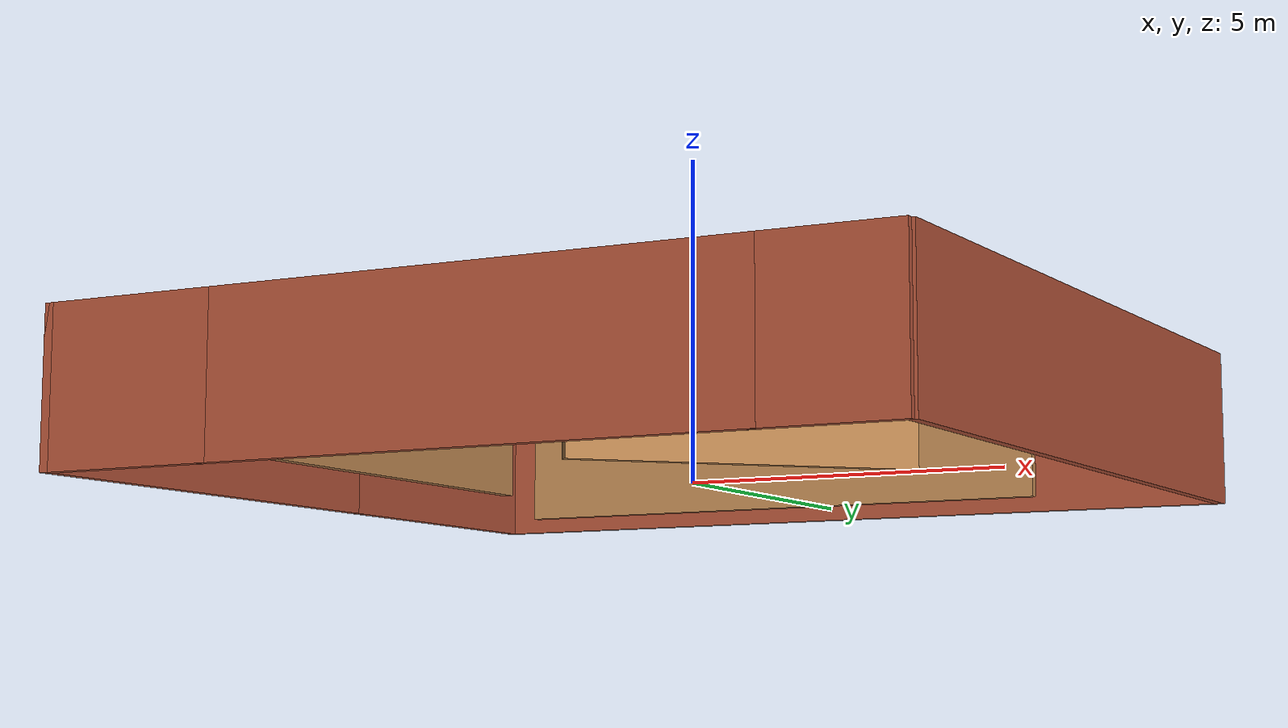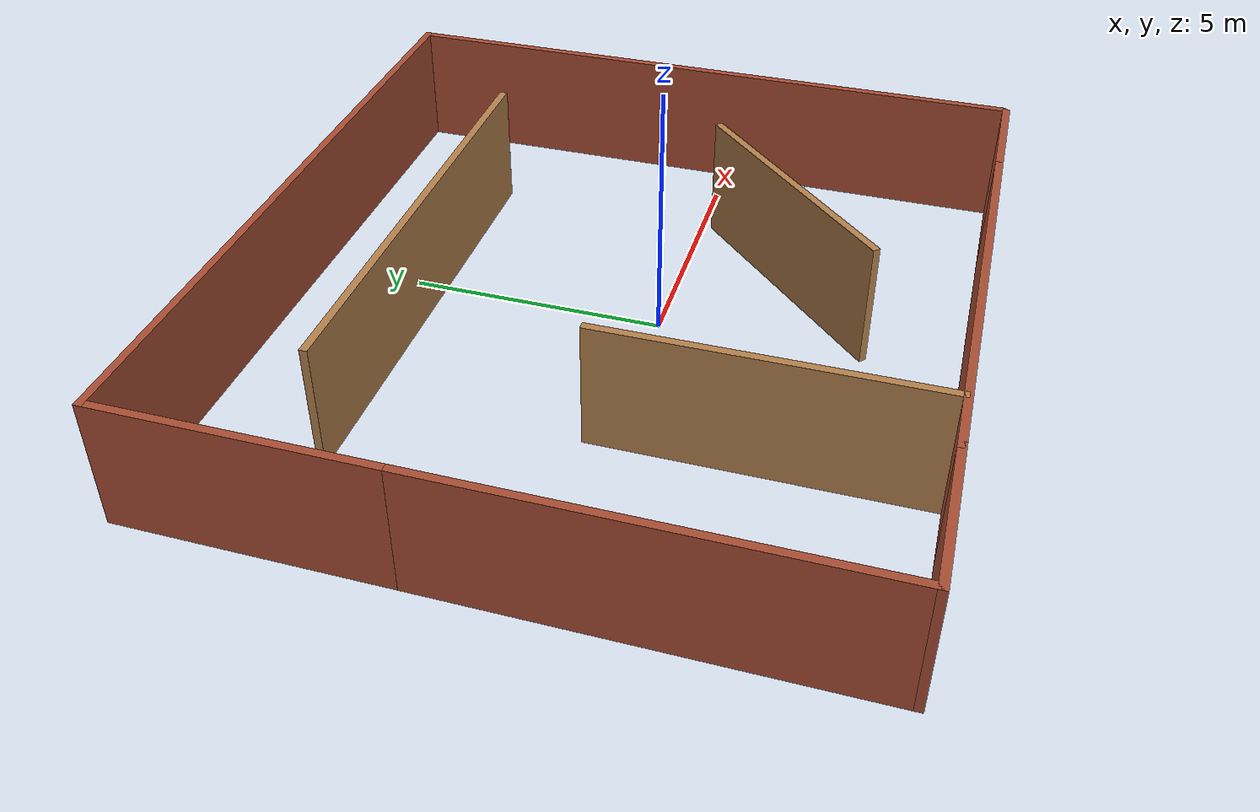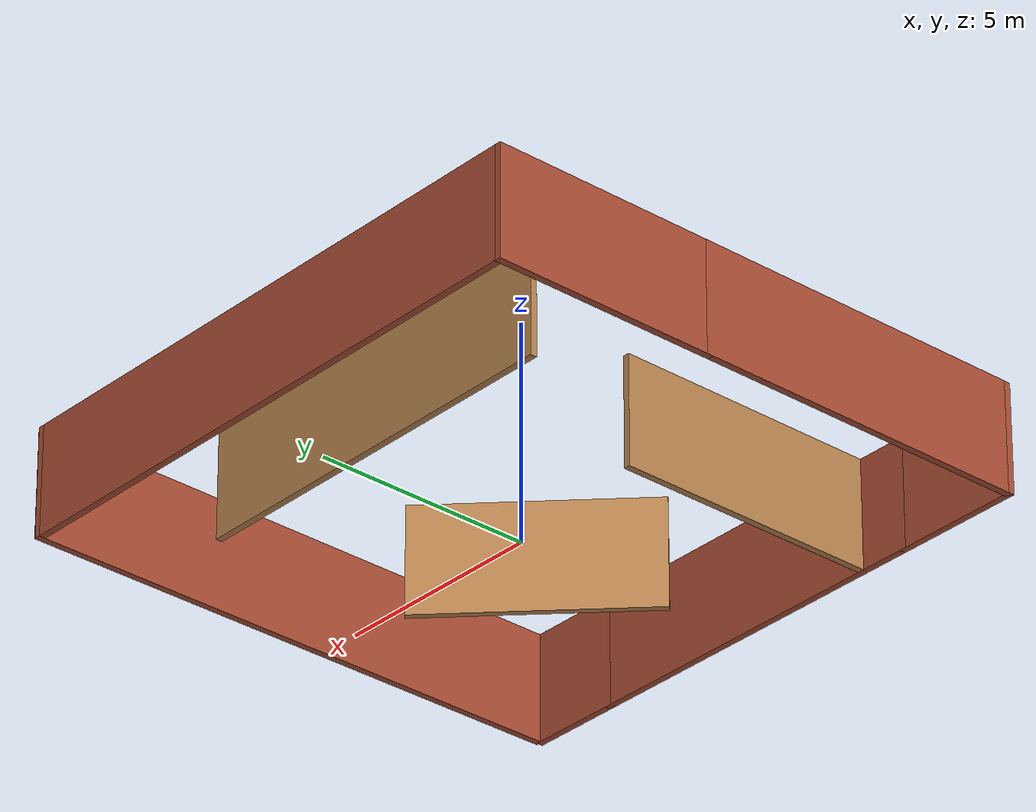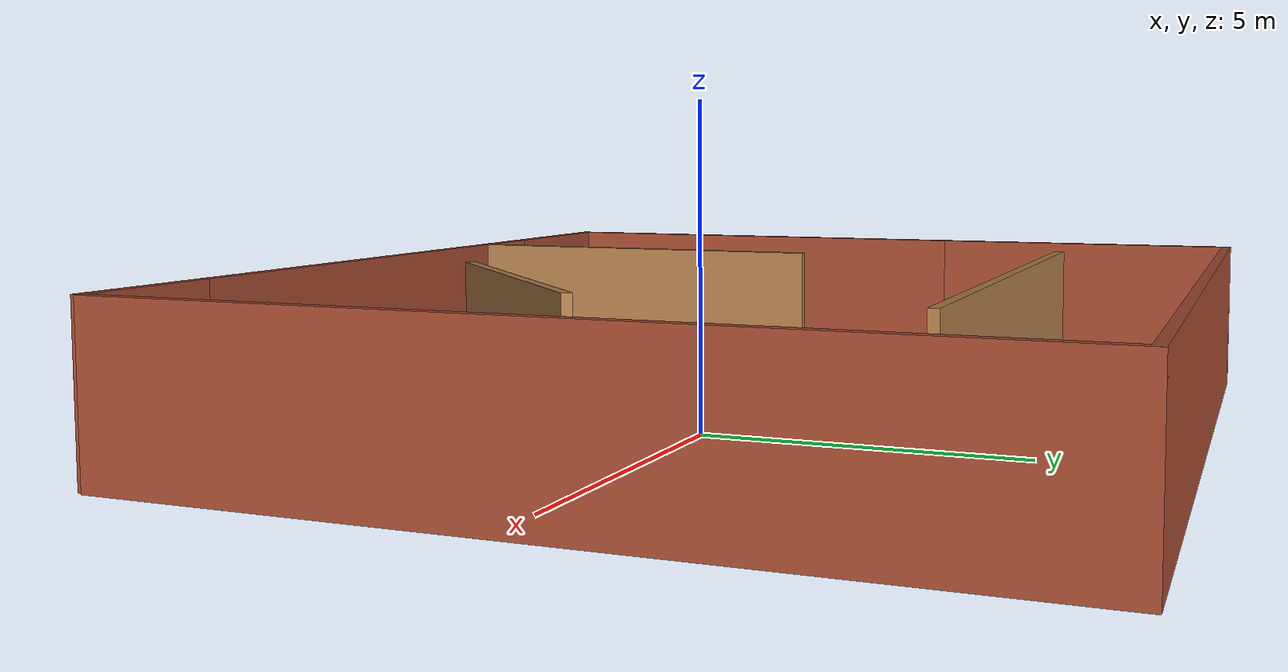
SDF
<?xml version='1.0'?>
<sdf version='1.7'>
  <model name='work'>
    <pose>-0.767569 0.657187 0 0 -0 0</pose>
    <link name='Wall_0'>
      <collision name='Wall_0_Collision'>
        <geometry>
          <box>
            <size>8.75 0.15 2.5</size>
          </box>
        </geometry>
        <pose>0 0 1.25 0 -0 0</pose>
      </collision>
      <visual name='Wall_0_Visual'>
        <pose>0 0 1.25 0 -0 0</pose>
        <geometry>
          <box>
            <size>8.75 0.15 2.5</size>
          </box>
        </geometry>
        <material>
          <script>
            <uri>file://media/materials/scripts/gazebo.material</uri>
            <name>Gazebo/Bricks</name>
          </script>
          <ambient>1 1 1 1</ambient>
        </material>
        <meta>
          <layer>0</layer>
        </meta>
      </visual>
      <pose>0.35 -6.475 0 0 -0 3.14159</pose>
    </link>
    <link name='Wall_11'>
      <collision name='Wall_11_Collision'>
        <geometry>
          <box>
            <size>9.25 0.15 2.5</size>
          </box>
        </geometry>
        <pose>0 0 1.25 0 -0 0</pose>
      </collision>
      <visual name='Wall_11_Visual'>
        <pose>0 0 1.25 0 -0 0</pose>
        <geometry>
          <box>
            <size>9.25 0.15 2.5</size>
          </box>
        </geometry>
        <material>
          <script>
            <uri>file://media/materials/scripts/gazebo.material</uri>
            <name>Gazebo/Wood</name>
          </script>
          <ambient>1 1 1 1</ambient>
        </material>
        <meta>
          <layer>0</layer>
        </meta>
      </visual>
      <pose>-0.058385 3.81084 0 0 -0 0</pose>
    </link>
    <link name='Wall_13'>
      <collision name='Wall_13_Collision'>
        <geometry>
          <box>
            <size>6.25 0.15 2.5</size>
          </box>
        </geometry>
        <pose>0 0 1.25 0 -0 0</pose>
      </collision>
      <visual name='Wall_13_Visual'>
        <pose>0 0 1.25 0 -0 0</pose>
        <geometry>
          <box>
            <size>6.25 0.15 2.5</size>
          </box>
        </geometry>
        <material>
          <script>
            <uri>file://media/materials/scripts/gazebo.material</uri>
            <name>Gazebo/Wood</name>
          </script>
          <ambient>1 1 1 1</ambient>
        </material>
        <meta>
          <layer>0</layer>
        </meta>
      </visual>
      <pose>-2.7709 -3.36567 0 0 -0 1.5708</pose>
    </link>
    <link name='Wall_15'>
      <collision name='Wall_15_Collision'>
        <geometry>
          <box>
            <size>5.25 0.15 2.5</size>
          </box>
        </geometry>
        <pose>0 0 1.25 0 -0 0</pose>
      </collision>
      <visual name='Wall_15_Visual'>
        <pose>0 0 1.25 0 -0 0</pose>
        <geometry>
          <box>
            <size>5.25 0.15 2.5</size>
          </box>
        </geometry>
        <material>
          <script>
            <uri>file://media/materials/scripts/gazebo.material</uri>
            <name>Gazebo/Wood</name>
          </script>
          <ambient>1 1 1 1</ambient>
        </material>
        <meta>
          <layer>0</layer>
        </meta>
      </visual>
      <pose>2.66373 -2.73897 0 0 -0 0.785398</pose>
    </link>
    <link name='Wall_2'>
      <collision name='Wall_2_Collision'>
        <geometry>
          <box>
            <size>3 0.15 2.5</size>
          </box>
        </geometry>
        <pose>0 0 1.25 0 -0 0</pose>
      </collision>
      <visual name='Wall_2_Visual'>
        <pose>0 0 1.25 0 -0 0</pose>
        <geometry>
          <box>
            <size>3 0.15 2.5</size>
          </box>
        </geometry>
        <material>
          <script>
            <uri>file://media/materials/scripts/gazebo.material</uri>
            <name>Gazebo/Bricks</name>
          </script>
          <ambient>1 1 1 1</ambient>
        </material>
        <meta>
          <layer>0</layer>
        </meta>
      </visual>
      <pose>-5.375 -6.475 0 0 -0 3.14159</pose>
    </link>
    <link name='Wall_3'>
      <collision name='Wall_3_Collision'>
        <geometry>
          <box>
            <size>8 0.15 2.5</size>
          </box>
        </geometry>
        <pose>0 0 1.25 0 -0 0</pose>
      </collision>
      <visual name='Wall_3_Visual'>
        <pose>0 0 1.25 0 -0 0</pose>
        <geometry>
          <box>
            <size>8 0.15 2.5</size>
          </box>
        </geometry>
        <material>
          <script>
            <uri>file://media/materials/scripts/gazebo.material</uri>
            <name>Gazebo/Bricks</name>
          </script>
          <ambient>1 1 1 1</ambient>
        </material>
        <meta>
          <layer>0</layer>
        </meta>
      </visual>
      <pose>-6.8 -2.55 0 0 -0 1.5708</pose>
    </link>
    <link name='Wall_4'>
      <collision name='Wall_4_Collision'>
        <geometry>
          <box>
            <size>5.25 0.15 2.5</size>
          </box>
        </geometry>
        <pose>0 0 1.25 0 -0 0</pose>
      </collision>
      <visual name='Wall_4_Visual'>
        <pose>0 0 1.25 0 -0 0</pose>
        <geometry>
          <box>
            <size>5.25 0.15 2.5</size>
          </box>
        </geometry>
        <material>
          <script>
            <uri>file://media/materials/scripts/gazebo.material</uri>
            <name>Gazebo/Bricks</name>
          </script>
          <ambient>1 1 1 1</ambient>
        </material>
        <meta>
          <layer>0</layer>
        </meta>
      </visual>
      <pose>-6.8 3.925 0 0 -0 1.5708</pose>
    </link>
    <link name='Wall_6'>
      <collision name='Wall_6_Collision'>
        <geometry>
          <box>
            <size>13.75 0.15 2.5</size>
          </box>
        </geometry>
        <pose>0 0 1.25 0 -0 0</pose>
      </collision>
      <visual name='Wall_6_Visual'>
        <pose>0 0 1.25 0 -0 0</pose>
        <geometry>
          <box>
            <size>13.75 0.15 2.5</size>
          </box>
        </geometry>
        <material>
          <script>
            <uri>file://media/materials/scripts/gazebo.material</uri>
            <name>Gazebo/Bricks</name>
          </script>
          <ambient>1 1 1 1</ambient>
        </material>
        <meta>
          <layer>0</layer>
        </meta>
      </visual>
      <pose>-0 6.475 0 0 -0 0</pose>
    </link>
    <link name='Wall_7'>
      <collision name='Wall_7_Collision'>
        <geometry>
          <box>
            <size>13 0.15 2.5</size>
          </box>
        </geometry>
        <pose>0 0 1.25 0 -0 0</pose>
      </collision>
      <visual name='Wall_7_Visual'>
        <pose>0 0 1.25 0 -0 0</pose>
        <geometry>
          <box>
            <size>13 0.15 2.5</size>
          </box>
        </geometry>
        <material>
          <script>
            <uri>file://media/materials/scripts/gazebo.material</uri>
            <name>Gazebo/Bricks</name>
          </script>
          <ambient>1 1 1 1</ambient>
        </material>
        <meta>
          <layer>0</layer>
        </meta>
      </visual>
      <pose>6.8 0.05 0 0 -0 -1.5708</pose>
    </link>
    <link name='Wall_9'>
      <collision name='Wall_9_Collision'>
        <geometry>
          <box>
            <size>2.25 0.15 2.5</size>
          </box>
        </geometry>
        <pose>0 0 1.25 0 -0 0</pose>
      </collision>
      <visual name='Wall_9_Visual'>
        <pose>0 0 1.25 0 -0 0</pose>
        <geometry>
          <box>
            <size>2.25 0.15 2.5</size>
          </box>
        </geometry>
        <material>
          <script>
            <uri>file://media/materials/scripts/gazebo.material</uri>
            <name>Gazebo/Bricks</name>
          </script>
          <ambient>1 1 1 1</ambient>
        </material>
        <meta>
          <layer>0</layer>
        </meta>
      </visual>
      <pose>5.7 -6.475 0 0 -0 0</pose>
    </link>
    <static>1</static>
  </model>
</sdf>
